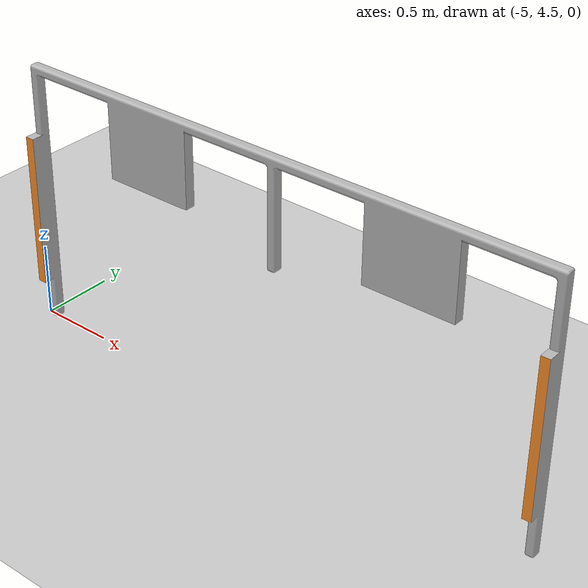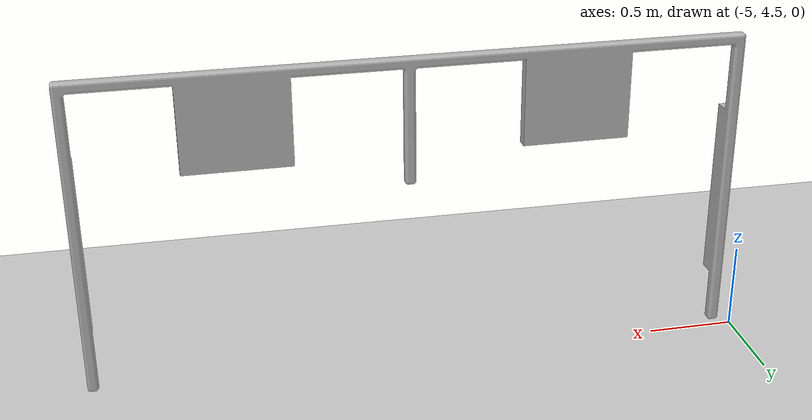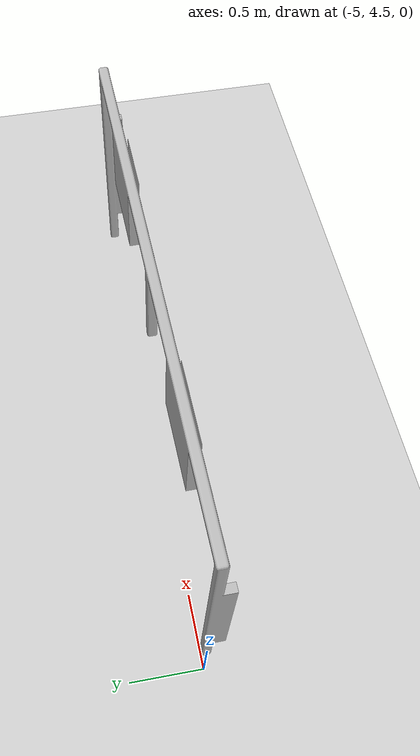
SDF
<?xml version="1.0"?>
<sdf version="1.4">
  <world name="default">
    <include>
      <uri>model://ground_plane</uri>
    </include>
    <include>
      <uri>model://sun</uri>
    </include>
    <model name="my_mesh">
      <static>true</static>
      <link name="body">
        <visual name="visual">
           <pose frame=''>0 0 0 0 -0 0</pose>
          <geometry>
              <mesh><uri>model://props/mygate1.dae</uri></mesh>
          </geometry>
        </visual>
      </link>
    </model>
  </world>
</sdf>
